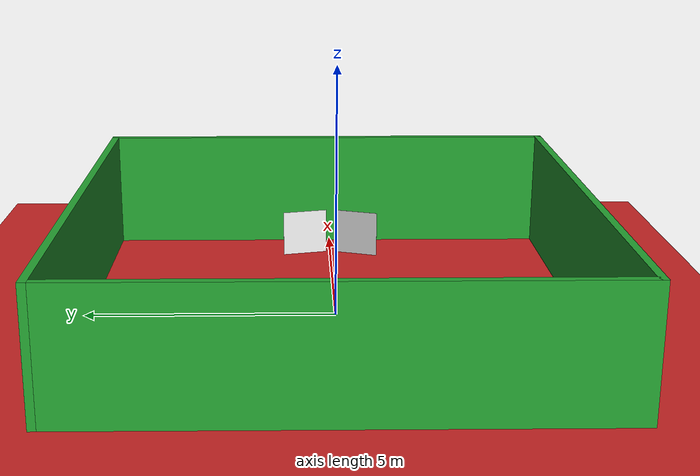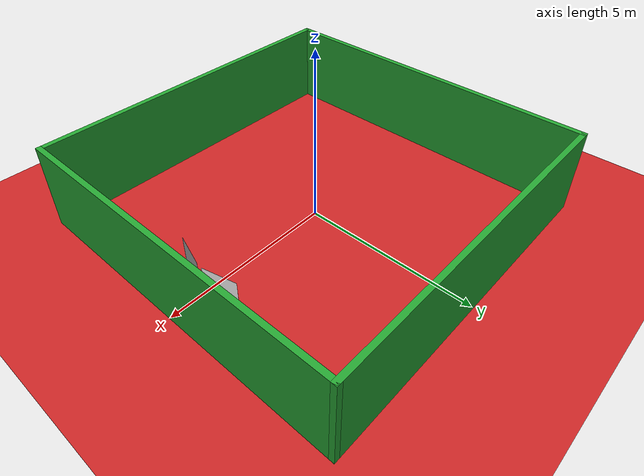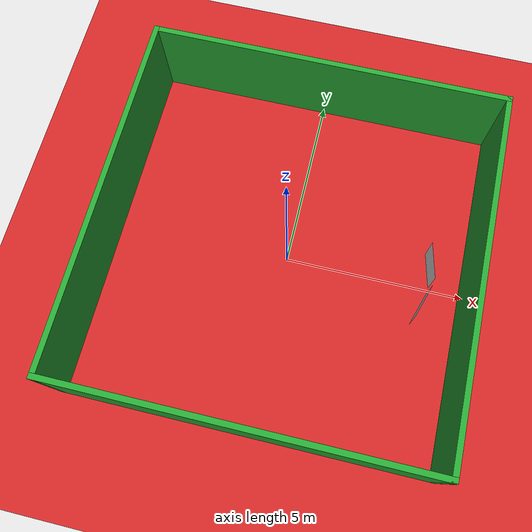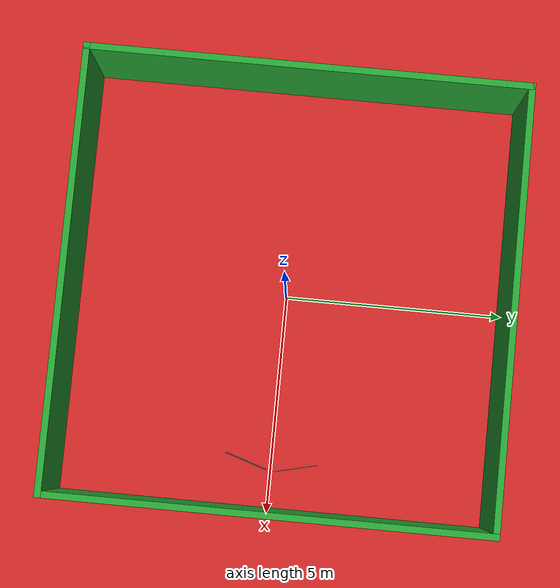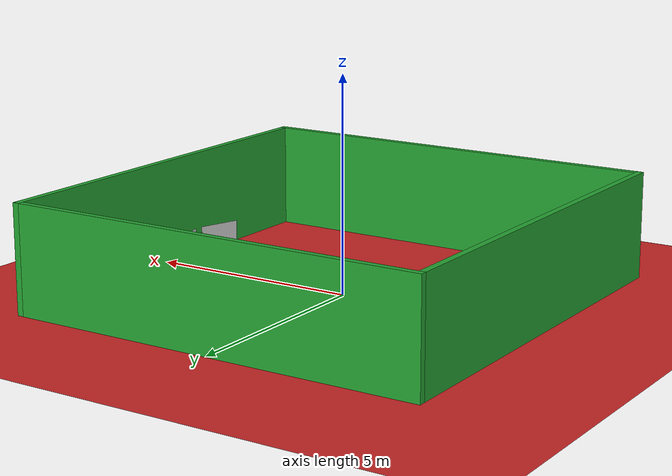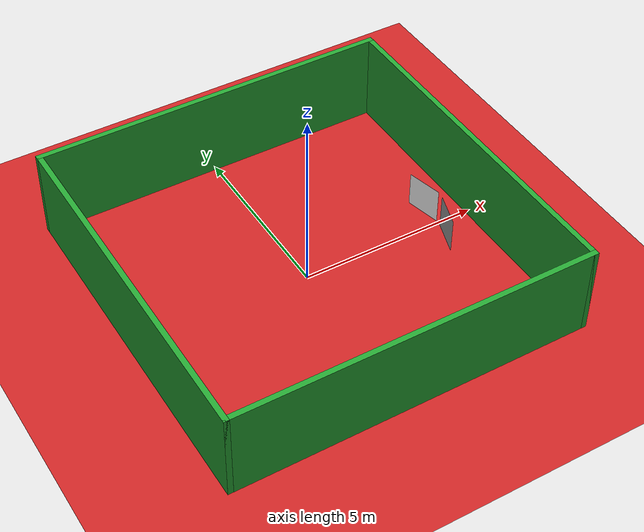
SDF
<sdf version="1.7">
 <world name="default">
  <light name="sun" type="directional">
   <pose>0 0 10 0 -0 0</pose>
   <diffuse>0.8 0.8 0.8 1</diffuse>
   <specular>0.2 0.2 0.2 1</specular>
   <attenuation>
    <range>1000</range>
    <constant>0.9</constant>
    <linear>0.01</linear>
    <quadratic>0.001</quadratic>
   </attenuation>
   <direction>-0.5 0.1 -0.9</direction>
   <spot><inner_angle>0</inner_angle><outer_angle>0</outer_angle><falloff>0</falloff></spot>
  </light>
  <model name="ground_plane">
   <static>1</static>
   <link name="link">
    <collision name="collision">
     <geometry><plane><normal>0 0 1</normal><size>100 100</size></plane></geometry>
     <surface>
      <contact><collide_bitmask>65535</collide_bitmask></contact>
      <friction><ode><mu>100</mu><mu2>50</mu2></ode></friction>
     </surface>
    </collision>
    <visual name="visual">
     <cast_shadows>0</cast_shadows>
     <geometry><plane><normal>0 0 1</normal><size>100 100</size></plane></geometry>
     <material>
      <script><uri>file://media/materials/scripts/gazebo.material</uri><name>Gazebo/Red</name></script>
     </material>
    </visual>
   </link>
  </model>
  <gravity>0 0 -9.8</gravity>
  <magnetic_field>6e-06 2.3e-05 -4.2e-05</magnetic_field>
  <atmosphere type="adiabatic"/>
  <physics type="ode">
   <max_step_size>0.001</max_step_size>
   <real_time_factor>1</real_time_factor>
   <real_time_update_rate>1000</real_time_update_rate>
  </physics>
  <scene><ambient>0.4 0.4 0.4 1</ambient><background>0.7 0.7 0.7 1</background><shadows>1</shadows></scene>
  <spherical_coordinates>
   <surface_model>EARTH_WGS84</surface_model>
   <latitude_deg>0</latitude_deg>
   <longitude_deg>0</longitude_deg>
   <elevation>0</elevation>
   <heading_deg>0</heading_deg>
  </spherical_coordinates>
  <model name="Walls">
   <pose>0.027084 0.057292 0 0 -0 0</pose>
   <link name="Wall_4">
    <collision name="Wall_4_Collision">
     <geometry><box><size>10 0.15 2.5</size></box></geometry>
     <pose>0 0 1.25 0 -0 0</pose>
    </collision>
    <visual name="Wall_4_Visual">
     <pose>0 0 1.25 0 -0 0</pose>
     <geometry><box><size>10 0.15 2.5</size></box></geometry>
     <material>
      <script><uri>file://media/materials/scripts/gazebo.material</uri><name>Gazebo/Green</name></script>
     </material>
     <meta><layer>0</layer></meta>
    </visual>
    <pose>0 -4.925 0 0 -0 0</pose>
   </link>
   <link name="Wall_5">
    <collision name="Wall_5_Collision">
     <geometry><box><size>10 0.15 2.5</size></box></geometry>
     <pose>0 0 1.25 0 -0 0</pose>
    </collision>
    <visual name="Wall_5_Visual">
     <pose>0 0 1.25 0 -0 0</pose>
     <geometry><box><size>10 0.15 2.5</size></box></geometry>
     <material>
      <script><uri>file://media/materials/scripts/gazebo.material</uri><name>Gazebo/Green</name></script>
     </material>
     <meta><layer>0</layer></meta>
    </visual>
    <pose>4.925 0 0 0 -0 1.5708</pose>
   </link>
   <link name="Wall_6">
    <collision name="Wall_6_Collision">
     <geometry><box><size>10 0.15 2.5</size></box></geometry>
     <pose>0 0 1.25 0 -0 0</pose>
    </collision>
    <visual name="Wall_6_Visual">
     <pose>0 0 1.25 0 -0 0</pose>
     <geometry><box><size>10 0.15 2.5</size></box></geometry>
     <material>
      <script><uri>file://media/materials/scripts/gazebo.material</uri><name>Gazebo/Green</name></script>
     </material>
     <meta><layer>0</layer></meta>
    </visual>
    <pose>0 4.925 0 0 -0 3.14159</pose>
   </link>
   <link name="Wall_7">
    <collision name="Wall_7_Collision">
     <geometry><box><size>10 0.15 2.5</size></box></geometry>
     <pose>0 0 1.25 0 -0 0</pose>
    </collision>
    <visual name="Wall_7_Visual">
     <pose>0 0 1.25 0 -0 0</pose>
     <geometry><box><size>10 0.15 2.5</size></box></geometry>
     <material>
      <script><uri>file://media/materials/scripts/gazebo.material</uri><name>Gazebo/Green</name></script>
     </material>
     <meta><layer>0</layer></meta>
    </visual>
    <pose>-4.925 0 0 0 -0 -1.5708</pose>
   </link>
   <static>1</static>
  </model>
  <model name="Marker1">
   <link name="link">
    <inertial>
     <mass>1.07646</mass>
     <inertia>
      <ixx>0.17941</ixx>
      <ixy>0</ixy>
      <ixz>0</ixz>
      <iyy>0.090033</iyy>
      <iyz>0</iyz>
      <izz>0.090033</izz>
     </inertia>
    </inertial>
    <visual name="visual">
     <geometry><box><size>0.001 1 1</size></box></geometry>
     <material>
      <script>
       <uri>/home/pijames/mrt_assignments_p/assignment2/robodash_ws/src/models/aruco_markers/Marker1/materials/scripts</uri>
       <uri>/home/pijames/mrt_assignments_p/assignment2/robodash_ws/src/models/aruco_markers/Marker1/materials/textures</uri>
       <name>Aruco1</name>
      </script>
      <shader type="pixel"><normal_map>__default__</normal_map></shader>
      <ambient>1 1 1 1</ambient>
      <diffuse>1 1 1 1</diffuse>
      <specular>0 0 0 1</specular>
      <emissive>0 0 0 1</emissive>
     </material>
    </visual>
    <collision name="collision">
     <geometry><box><size>0.001 1 1</size></box></geometry>
     <surface>
      <friction>
       <ode><mu>1</mu><mu2>1</mu2><fdir1>0 0 0</fdir1><slip1>0</slip1><slip2>0</slip2></ode>
       <torsional>
        <coefficient>1</coefficient>
        <patch_radius>0</patch_radius>
        <surface_radius>0</surface_radius>
        <use_patch_radius>1</use_patch_radius>
        <ode><slip>0</slip></ode>
       </torsional>
      </friction>
      <bounce><restitution_coefficient>0</restitution_coefficient><threshold>1e+06</threshold></bounce>
      <contact>
       <collide_without_contact>0</collide_without_contact>
       <collide_without_contact_bitmask>1</collide_without_contact_bitmask>
       <collide_bitmask>1</collide_bitmask>
       <ode>
        <soft_cfm>0</soft_cfm>
        <soft_erp>0.2</soft_erp>
        <kp>1e+13</kp>
        <kd>1</kd>
        <max_vel>0.01</max_vel>
        <min_depth>0</min_depth>
       </ode>
       <bullet>
        <split_impulse>1</split_impulse>
        <split_impulse_penetration_threshold>-0.01</split_impulse_penetration_threshold>
        <soft_cfm>0</soft_cfm>
        <soft_erp>0.2</soft_erp>
        <kp>1e+13</kp>
        <kd>1</kd>
       </bullet>
      </contact>
     </surface>
    </collision>
   </link>
   <static>1</static>
   <pose>3.91802 0.584908 0.489825 0 -0 0.231647</pose>
  </model>
  <model name="Marker2">
   <link name="link">
    <inertial>
     <mass>1</mass>
     <inertia>
      <ixx>0.166667</ixx>
      <ixy>0</ixy>
      <ixz>0</ixz>
      <iyy>0.166667</iyy>
      <iyz>0</iyz>
      <izz>0.166667</izz>
     </inertia>
    </inertial>
    <visual name="visual">
     <geometry><box><size>0.001 1 1</size></box></geometry>
     <material>
      <script>
       <uri>/home/pijames/mrt_assignments_p/assignment2/robodash_ws/src/models/aruco_markers/Marker2/materials/scripts</uri>
       <uri>/home/pijames/mrt_assignments_p/assignment2/robodash_ws/src/models/aruco_markers/Marker2/materials/textures</uri>
       <name>Aruco2</name>
      </script>
      <shader type="pixel"><normal_map>__default__</normal_map></shader>
      <ambient>0.3 0.3 0.3 1</ambient>
      <diffuse>0.7 0.7 0.7 1</diffuse>
      <specular>0.01 0.01 0.01 1</specular>
      <emissive>0 0 0 1</emissive>
     </material>
    </visual>
    <collision name="collision">
     <geometry><box><size>0.001 1 1</size></box></geometry>
     <surface>
      <friction>
       <ode><mu>1</mu><mu2>1</mu2><fdir1>0 0 0</fdir1><slip1>0</slip1><slip2>0</slip2></ode>
       <torsional>
        <coefficient>1</coefficient>
        <patch_radius>0</patch_radius>
        <surface_radius>0</surface_radius>
        <use_patch_radius>1</use_patch_radius>
        <ode><slip>0</slip></ode>
       </torsional>
      </friction>
      <bounce><restitution_coefficient>0</restitution_coefficient><threshold>1e+06</threshold></bounce>
      <contact>
       <collide_without_contact>0</collide_without_contact>
       <collide_without_contact_bitmask>1</collide_without_contact_bitmask>
       <collide_bitmask>1</collide_bitmask>
       <ode>
        <soft_cfm>0</soft_cfm>
        <soft_erp>0.2</soft_erp>
        <kp>1e+13</kp>
        <kd>1</kd>
        <max_vel>0.01</max_vel>
        <min_depth>0</min_depth>
       </ode>
       <bullet>
        <split_impulse>1</split_impulse>
        <split_impulse_penetration_threshold>-0.01</split_impulse_penetration_threshold>
        <soft_cfm>0</soft_cfm>
        <soft_erp>0.2</soft_erp>
        <kp>1e+13</kp>
        <kd>1</kd>
       </bullet>
      </contact>
     </surface>
    </collision>
   </link>
   <static>0</static>
   <pose>3.8509 -0.56766 0.497342 0 0 -0.315247</pose>
  </model>
 </world>
</sdf>
